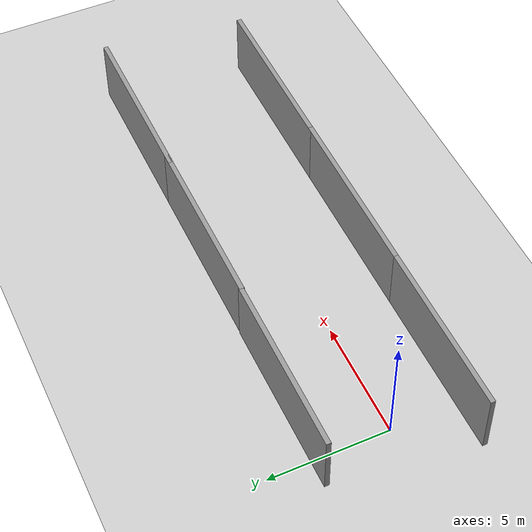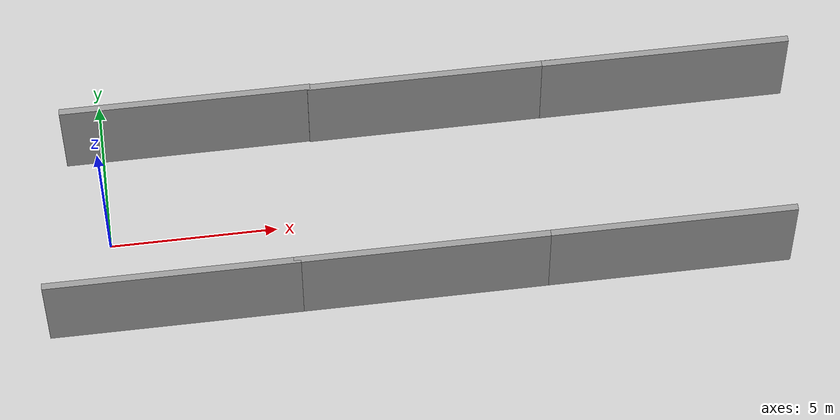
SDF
<sdf version="1.7">
 <world name="default">
  <light name="sun" type="directional">
   <pose>0 0 10 0 -0 0</pose>
   <diffuse>0.8 0.8 0.8 1</diffuse>
   <specular>0.2 0.2 0.2 1</specular>
   <attenuation>
    <range>1000</range>
    <constant>0.9</constant>
    <linear>0.01</linear>
    <quadratic>0.001</quadratic>
   </attenuation>
   <direction>-0.5 0.1 -0.9</direction>
   <spot><inner_angle>0</inner_angle><outer_angle>0</outer_angle><falloff>0</falloff></spot>
  </light>
  <model name="ground_plane">
   <static>1</static>
   <link name="link">
    <collision name="collision">
     <geometry><plane><normal>0 0 1</normal><size>100 100</size></plane></geometry>
     <surface>
      <contact><collide_bitmask>65535</collide_bitmask></contact>
      <friction><ode><mu>100</mu><mu2>50</mu2></ode></friction>
     </surface>
    </collision>
    <visual name="visual">
     <cast_shadows>0</cast_shadows>
     <geometry><plane><normal>0 0 1</normal><size>100 100</size></plane></geometry>
     <material>
      <script><uri>file://media/materials/scripts/gazebo.material</uri><name>Gazebo/Grey</name></script>
     </material>
    </visual>
   </link>
  </model>
  <gravity>0 0 -9.8</gravity>
  <magnetic_field>6e-06 2.3e-05 -4.2e-05</magnetic_field>
  <atmosphere type="adiabatic"/>
  <physics type="ode">
   <max_step_size>0.001</max_step_size>
   <real_time_factor>1</real_time_factor>
   <real_time_update_rate>1000</real_time_update_rate>
  </physics>
  <scene><ambient>0.4 0.4 0.4 1</ambient><background>0.7 0.7 0.7 1</background><shadows>1</shadows></scene>
  <spherical_coordinates>
   <surface_model>EARTH_WGS84</surface_model>
   <latitude_deg>0</latitude_deg>
   <longitude_deg>0</longitude_deg>
   <elevation>0</elevation>
   <heading_deg>0</heading_deg>
  </spherical_coordinates>
  <model name="grey_wall_3">
   <link name="link">
    <pose>0.17993 -0.002024 1.4 0 -0 0</pose>
    <visual name="visual">
     <cast_shadows>0</cast_shadows>
     <geometry><box><size>7.5 0.2 2.8</size></box></geometry>
     <material>
      <script>
       <uri>model://grey_wall/materials/scripts</uri>
       <uri>model://grey_wall/materials/textures</uri>
       <name>vrc/grey_wall</name>
      </script>
      <shader type="pixel"/>
     </material>
    </visual>
    <collision name="collision">
     <geometry><box><size>7.5 0.2 2.8</size></box></geometry>
     <surface>
      <friction>
       <ode><mu>1</mu><mu2>1</mu2><fdir1>0 0 0</fdir1><slip1>0</slip1><slip2>0</slip2></ode>
       <torsional>
        <coefficient>1</coefficient>
        <patch_radius>0</patch_radius>
        <surface_radius>0</surface_radius>
        <use_patch_radius>1</use_patch_radius>
        <ode><slip>0</slip></ode>
       </torsional>
      </friction>
      <bounce><restitution_coefficient>0</restitution_coefficient><threshold>1e+06</threshold></bounce>
      <contact>
       <collide_without_contact>0</collide_without_contact>
       <collide_without_contact_bitmask>1</collide_without_contact_bitmask>
       <collide_bitmask>1</collide_bitmask>
       <ode>
        <soft_cfm>0</soft_cfm>
        <soft_erp>0.2</soft_erp>
        <kp>1e+13</kp>
        <kd>1</kd>
        <max_vel>0.01</max_vel>
        <min_depth>0</min_depth>
       </ode>
       <bullet>
        <split_impulse>1</split_impulse>
        <split_impulse_penetration_threshold>-0.01</split_impulse_penetration_threshold>
        <soft_cfm>0</soft_cfm>
        <soft_erp>0.2</soft_erp>
        <kp>1e+13</kp>
        <kd>1</kd>
       </bullet>
      </contact>
     </surface>
    </collision>
   </link>
   <model name="grey_wall">
    <static>1</static>
    <link name="link">
     <pose>0 0 1.4 0 -0 0</pose>
     <collision name="collision"><geometry><box><size>7.5 0.2 2.8</size></box></geometry></collision>
     <visual name="visual">
      <cast_shadows>0</cast_shadows>
      <geometry><box><size>7.5 0.2 2.8</size></box></geometry>
      <material>
       <script>
        <uri>model://grey_wall/materials/scripts</uri>
        <uri>model://grey_wall/materials/textures</uri>
        <name>vrc/grey_wall</name>
       </script>
      </material>
     </visual>
    </link>
    <pose>-0.704949 -5.97077 0 0 -0 0</pose>
   </model>
   <static>1</static>
   <pose>2.46509 3.13037 0 0 -0 0</pose>
  </model>
  <model name="grey_wall_0">
   <static>1</static>
   <link name="link">
    <pose>0 0 1.4 0 -0 0</pose>
    <collision name="collision"><geometry><box><size>7.5 0.2 2.8</size></box></geometry></collision>
    <visual name="visual">
     <cast_shadows>0</cast_shadows>
     <geometry><box><size>7.5 0.2 2.8</size></box></geometry>
     <material>
      <script>
       <uri>model://grey_wall/materials/scripts</uri>
       <uri>model://grey_wall/materials/textures</uri>
       <name>vrc/grey_wall</name>
      </script>
     </material>
    </visual>
   </link>
   <pose>9.05358 -2.83945 0 0 -0 0</pose>
  </model>
  <model name="grey_wall_1">
   <static>1</static>
   <link name="link">
    <pose>0 0 1.4 0 -0 0</pose>
    <collision name="collision"><geometry><box><size>7.5 0.2 2.8</size></box></geometry></collision>
    <visual name="visual">
     <cast_shadows>0</cast_shadows>
     <geometry><box><size>7.5 0.2 2.8</size></box></geometry>
     <material>
      <script>
       <uri>model://grey_wall/materials/scripts</uri>
       <uri>model://grey_wall/materials/textures</uri>
       <name>vrc/grey_wall</name>
      </script>
     </material>
    </visual>
   </link>
   <pose>16.3388 -2.83839 0 0 -0 0</pose>
  </model>
  <model name="grey_wall_2">
   <static>1</static>
   <link name="link">
    <pose>0 0 1.4 0 -0 0</pose>
    <collision name="collision"><geometry><box><size>7.5 0.2 2.8</size></box></geometry></collision>
    <visual name="visual">
     <cast_shadows>0</cast_shadows>
     <geometry><box><size>7.5 0.2 2.8</size></box></geometry>
     <material>
      <script>
       <uri>model://grey_wall/materials/scripts</uri>
       <uri>model://grey_wall/materials/textures</uri>
       <name>vrc/grey_wall</name>
      </script>
     </material>
    </visual>
   </link>
   <pose>10.0555 3.10321 0 0 -0 0</pose>
  </model>
  <model name="grey_wall_4">
   <static>1</static>
   <link name="link">
    <pose>0 0 1.4 0 -0 0</pose>
    <collision name="collision"><geometry><box><size>7.5 0.2 2.8</size></box></geometry></collision>
    <visual name="visual">
     <cast_shadows>0</cast_shadows>
     <geometry><box><size>7.5 0.2 2.8</size></box></geometry>
     <material>
      <script>
       <uri>model://grey_wall/materials/scripts</uri>
       <uri>model://grey_wall/materials/textures</uri>
       <name>vrc/grey_wall</name>
      </script>
     </material>
    </visual>
   </link>
   <pose>17.1322 3.09919 0 0 -0 0</pose>
  </model>
 </world>
</sdf>
